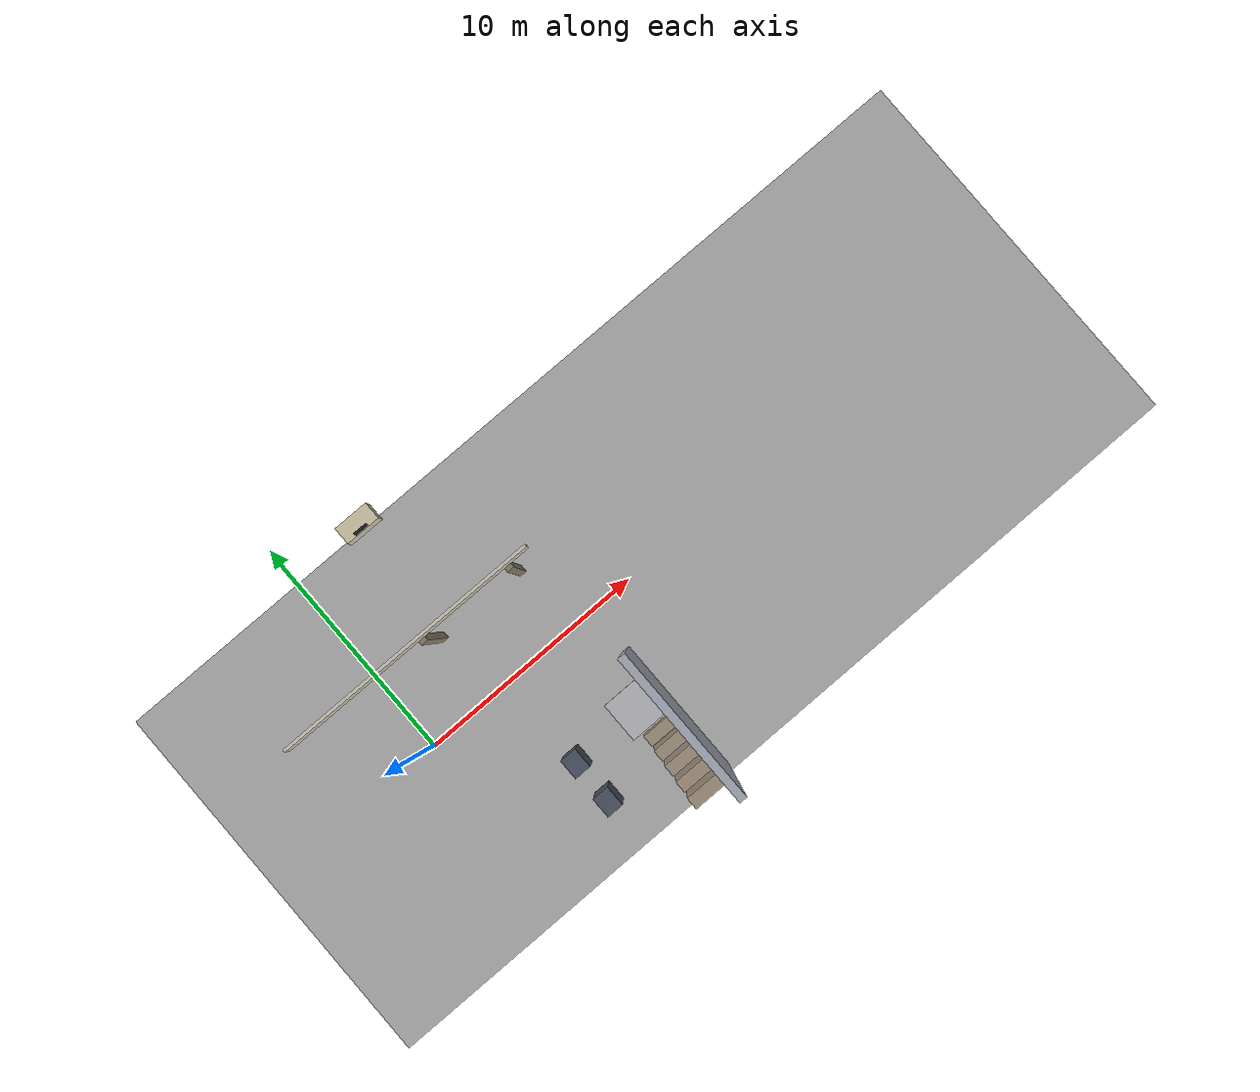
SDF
<sdf version="1.9">
 <world name="single_agent_search_room_easy">
  <model name="ground">
   <static>true</static>
   <link name="link">
    <collision name="collision"><geometry><box><size>38.6 16.6 0.2</size></box></geometry></collision>
    <visual name="visual">
     <geometry><box><size>38.6 16.6 0.2</size></box></geometry>
     <material><ambient>0.58 0.58 0.58 1</ambient><diffuse>0.68 0.68 0.68 1</diffuse></material>
    </visual>
   </link>
   <pose>11 0 -0.1 0 0 0</pose>
  </model>
  <model name="wall_A_east_south">
   <static>true</static>
   <link name="link">
    <collision name="collision"><geometry><box><size>0.3 6.0 10.0</size></box></geometry></collision>
    <visual name="visual">
     <geometry><box><size>0.3 6.0 10.0</size></box></geometry>
     <material><ambient>0.55 0.57 0.62 1</ambient><diffuse>0.65 0.67 0.72 1</diffuse></material>
    </visual>
   </link>
   <pose>8.15 -5.0 5.0 0 0 0</pose>
  </model>
  <model name="col_inner_ne">
   <static>true</static>
   <link name="link">
    <collision name="collision"><geometry><box><size>0.3 0.3 5.0</size></box></geometry></collision>
    <visual name="visual">
     <geometry><box><size>0.3 0.3 5.0</size></box></geometry>
     <material><ambient>0.42 0.38 0.32 1</ambient><diffuse>0.52 0.48 0.40 1</diffuse></material>
    </visual>
   </link>
   <pose>3.0 3.0 2.5 0 0 0</pose>
  </model>
  <model name="col_arm_n_east">
   <static>true</static>
   <link name="link">
    <collision name="collision"><geometry><box><size>0.3 0.3 5.0</size></box></geometry></collision>
    <visual name="visual">
     <geometry><box><size>0.3 0.3 5.0</size></box></geometry>
     <material><ambient>0.42 0.38 0.32 1</ambient><diffuse>0.52 0.48 0.40 1</diffuse></material>
    </visual>
   </link>
   <pose>7.0 3.0 2.5 0 0 0</pose>
  </model>
  <model name="stair_s1">
   <static>true</static>
   <link name="link">
    <collision name="collision"><geometry><box><size>1.5 0.50 1.00</size></box></geometry></collision>
    <visual name="visual">
     <geometry><box><size>1.5 0.50 1.00</size></box></geometry>
     <material><ambient>0.50 0.46 0.40 1</ambient><diffuse>0.62 0.56 0.48 1</diffuse></material>
    </visual>
   </link>
   <pose>7.25 -5.25 0.50 0 0 0</pose>
  </model>
  <model name="stair_s2">
   <static>true</static>
   <link name="link">
    <collision name="collision"><geometry><box><size>1.5 0.50 2.00</size></box></geometry></collision>
    <visual name="visual">
     <geometry><box><size>1.5 0.50 2.00</size></box></geometry>
     <material><ambient>0.50 0.46 0.40 1</ambient><diffuse>0.62 0.56 0.48 1</diffuse></material>
    </visual>
   </link>
   <pose>7.25 -5.85 1.00 0 0 0</pose>
  </model>
  <model name="stair_s3">
   <static>true</static>
   <link name="link">
    <collision name="collision"><geometry><box><size>1.5 0.50 3.00</size></box></geometry></collision>
    <visual name="visual">
     <geometry><box><size>1.5 0.50 3.00</size></box></geometry>
     <material><ambient>0.50 0.46 0.40 1</ambient><diffuse>0.62 0.56 0.48 1</diffuse></material>
    </visual>
   </link>
   <pose>7.25 -6.45 1.50 0 0 0</pose>
  </model>
  <model name="stair_s4">
   <static>true</static>
   <link name="link">
    <collision name="collision"><geometry><box><size>1.5 0.50 4.00</size></box></geometry></collision>
    <visual name="visual">
     <geometry><box><size>1.5 0.50 4.00</size></box></geometry>
     <material><ambient>0.50 0.46 0.40 1</ambient><diffuse>0.62 0.56 0.48 1</diffuse></material>
    </visual>
   </link>
   <pose>7.25 -7.05 2.00 0 0 0</pose>
  </model>
  <model name="stair_s5">
   <static>true</static>
   <link name="link">
    <collision name="collision"><geometry><box><size>1.5 0.50 5.00</size></box></geometry></collision>
    <visual name="visual">
     <geometry><box><size>1.5 0.50 5.00</size></box></geometry>
     <material><ambient>0.50 0.46 0.40 1</ambient><diffuse>0.62 0.56 0.48 1</diffuse></material>
    </visual>
   </link>
   <pose>7.25 -7.65 2.50 0 0 0</pose>
  </model>
  <model name="mezz_slab_south_ne_cap">
   <static>true</static>
   <link name="link">
    <collision name="collision"><geometry><box><size>1.6 1.6 0.2</size></box></geometry></collision>
    <visual name="visual">
     <geometry><box><size>1.6 1.6 0.2</size></box></geometry>
     <material><ambient>0.62 0.62 0.64 1</ambient><diffuse>0.72 0.72 0.74 1</diffuse></material>
    </visual>
   </link>
   <pose>7.2 -3.8 5.1 0 0 0</pose>
  </model>
  <model name="railing_atrium_n">
   <static>true</static>
   <link name="link">
    <collision name="collision"><geometry><box><size>11.0 0.12 0.9</size></box></geometry></collision>
    <visual name="visual">
     <geometry><box><size>11.0 0.12 0.9</size></box></geometry>
     <material><ambient>0.70 0.68 0.64 1</ambient><diffuse>0.80 0.78 0.72 1</diffuse></material>
    </visual>
   </link>
   <pose>2.5 3.06 5.65 0 0 0</pose>
  </model>
  <model name="desk_north_3">
   <static>true</static>
   <link name="link">
    <collision name="collision"><geometry><box><size>1.4 0.7 0.75</size></box></geometry></collision>
    <visual name="visual">
     <geometry><box><size>1.4 0.7 0.75</size></box></geometry>
     <material><ambient>0.72 0.68 0.58 1</ambient><diffuse>0.82 0.78 0.66 1</diffuse></material>
    </visual>
   </link>
   <pose>4.0 7.5 5.575 0 0 0</pose>
  </model>
  <model name="monitor_n3">
   <static>true</static>
   <link name="link">
    <collision name="collision"><geometry><box><size>0.55 0.06 0.38</size></box></geometry></collision>
    <visual name="visual">
     <geometry><box><size>0.55 0.06 0.38</size></box></geometry>
     <material><ambient>0.10 0.10 0.12 1</ambient><diffuse>0.16 0.16 0.20 1</diffuse></material>
    </visual>
   </link>
   <pose>4.0 7.2 6.14 0 0 0</pose>
  </model>
  <model name="server_rack_1">
   <static>true</static>
   <link name="link">
    <collision name="collision"><geometry><box><size>0.65 0.8 1.8</size></box></geometry></collision>
    <visual name="visual">
     <geometry><box><size>0.65 0.8 1.8</size></box></geometry>
     <material><ambient>0.22 0.25 0.30 1</ambient><diffuse>0.28 0.32 0.38 1</diffuse></material>
    </visual>
   </link>
   <pose>4.5 -5.5 6.1 0 0 0</pose>
  </model>
  <model name="server_rack_2">
   <static>true</static>
   <link name="link">
    <collision name="collision"><geometry><box><size>0.65 0.8 1.8</size></box></geometry></collision>
    <visual name="visual">
     <geometry><box><size>0.65 0.8 1.8</size></box></geometry>
     <material><ambient>0.22 0.25 0.30 1</ambient><diffuse>0.28 0.32 0.38 1</diffuse></material>
    </visual>
   </link>
   <pose>4.5 -3.8 6.1 0 0 0</pose>
  </model>
 </world>
</sdf>
